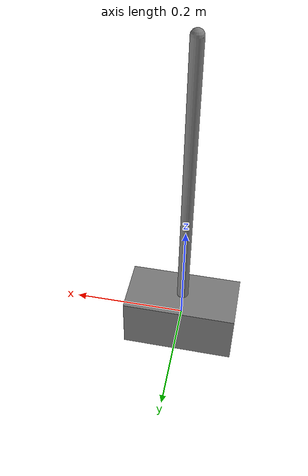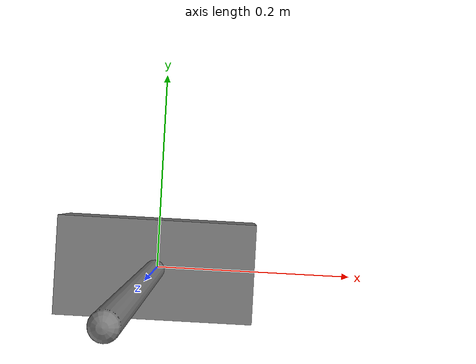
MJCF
<mujoco model="asset_zoo_cartpole_fixture">
  <worldbody>
    <body name="cart">
      <joint name="cart_slide" type="slide" axis="1 0 0"/>
      <geom type="box" size="0.1 0.05 0.05"/>
      <body name="pole" pos="0 0 0.05">
        <joint name="pole_hinge" type="hinge" axis="0 1 0"/>
        <geom type="capsule" fromto="0 0 0 0 0 0.5" size="0.01"/>
      </body>
    </body>
  </worldbody>
</mujoco>
